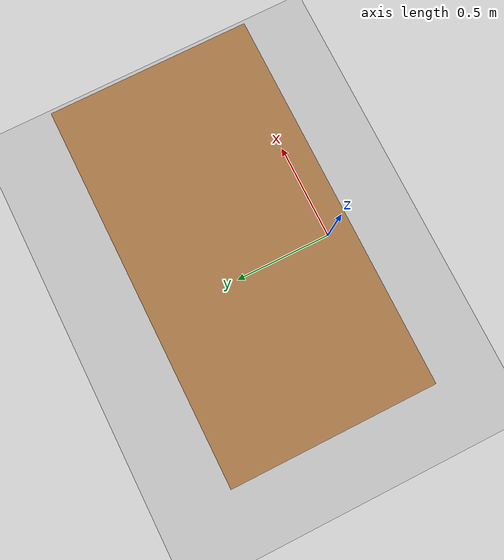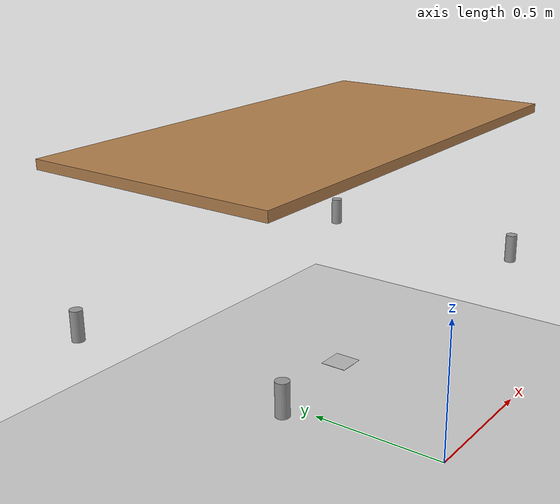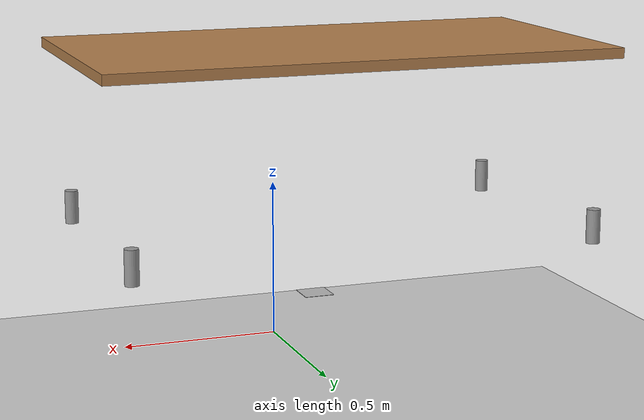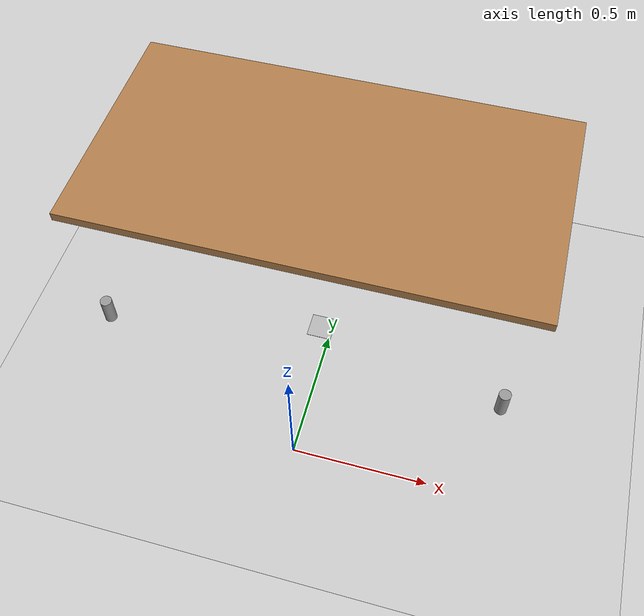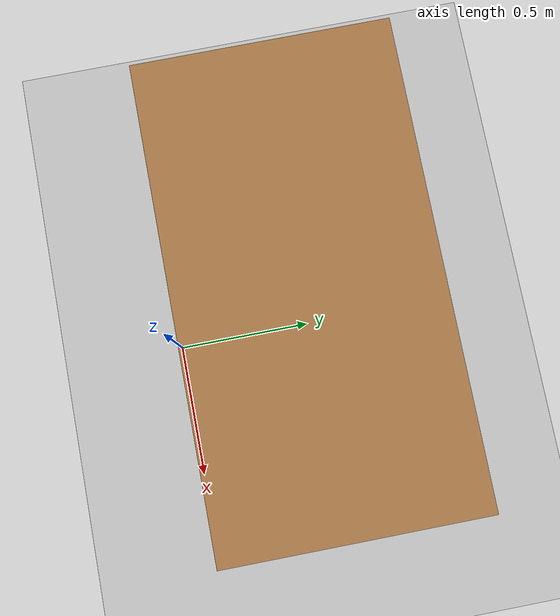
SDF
<?xml version="1.0" ?>
<sdf version="1.4">
  <!-- We use a custom world for the iiwa so that the camera angle is launched correctly. -->
  <!-- One can change this world to his needs or use another one. -->

  <world name="default">

    <include>
      <uri>model://ground_plane</uri>
    </include>

    <!-- Global light source -->
    <include>
      <uri>model://sun</uri>
    </include>

    <include>
      <uri>model://marker26_8cm</uri>
      <pose>0 0.4 .24 0 0 0</pose>
    </include>

    <include>
      <uri>model://table_short</uri>
      <name>table</name>
      <pose>0 0.5 0 0 0 0</pose>
      <static>1</static>
    </include>
  </world>

</sdf>

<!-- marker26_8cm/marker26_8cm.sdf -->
<sdf version="1.4">
  <model name="marker26_8cm">
    <static>0</static>
    <link name="marker">
      <inertial>
        <mass>0.1</mass>
        <inertia>
          <ixx>0.000000</ixx>
          <ixy>0.000000</ixy>
          <ixz>0.000000</ixz>
          <iyy>0.000000</iyy>
          <iyz>0.000000</iyz>
          <izz>0.000000</izz>
        </inertia>
      </inertial>
      <visual name="visual">
        <geometry>
          <box>
            <!-- SIZE OF THE MARKER + MARGIN -->
            <size>0.09 0.09 0.001</size>
          </box>
        </geometry>
        <material>
          <script>
            <uri>file://models/marker26_8cm/materials/scripts/marker.material</uri>
            <name>CustomAruco</name>
          </script>
        </material>
      </visual>
      <collision name="collision">
        <geometry>
          <box>
            <size>0.09 0.09 0.02</size>
            <!-- SIZE OF THE MARKER + MARGIN -->
          </box>
        </geometry>
        <surface>
          <bounce />
          <friction>
            <ode />
          </friction>
          <contact>
            <ode />
          </contact>
        </surface>
      </collision>
      <self_collide>1</self_collide>
      <kinematic>0</kinematic>
      <gravity>1</gravity>
    </link>
  </model>
</sdf>

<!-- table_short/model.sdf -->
<sdf version="1.5">
  <model name="table">
    <static>true</static>
    <link name="link">
      <collision name="surface">
        <pose>0 0 1.0 0 0 0</pose>
        <geometry>
          <box>
            <size>1.5 0.8 0.03</size>
          </box>
        </geometry>
        <surface>
          <friction>
            <ode>
              <mu>0.6</mu>
              <mu2>0.6</mu2>
            </ode>
          </friction>
        </surface>
      </collision>
      <visual name="visual1">
        <pose>0 0 1.0 0 0 0</pose>
        <geometry>
          <box>
            <size>1.5 0.8 0.03</size>
          </box>
        </geometry>
        <material>
          <script>
            <uri>file://media/materials/scripts/gazebo.material</uri>
            <name>Gazebo/Wood</name>
          </script>
        </material>
      </visual>
      <collision name="front_left_leg">
        <pose>0.68 0.38 0.5 0 0 0</pose>
        <geometry>
          <cylinder>
            <radius>0.02</radius>
            <length>0.10</length>
          </cylinder>
        </geometry>
      </collision>
      <visual name="front_left_leg">
        <pose>0.68 0.38 0.5 0 0 0</pose>
        <geometry>
          <cylinder>
            <radius>0.02</radius>
            <length>0.10</length>
          </cylinder>
        </geometry>
        <material>
          <script>
            <uri>file://media/materials/scripts/gazebo.material</uri>
            <name>Gazebo/Grey</name>
          </script>
        </material>
      </visual>
      <collision name="front_right_leg">
        <pose>0.68 -0.38 0.5 0 0 0</pose>
        <geometry>
          <cylinder>
            <radius>0.02</radius>
            <length>0.10</length>
          </cylinder>
        </geometry>
      </collision>
      <visual name="front_right_leg">
        <pose>0.68 -0.38 0.5 0 0 0</pose>
        <geometry>
          <cylinder>
            <radius>0.02</radius>
            <length>0.10</length>
          </cylinder>
        </geometry>
        <material>
          <script>
            <uri>file://media/materials/scripts/gazebo.material</uri>
            <name>Gazebo/Grey</name>
          </script>
        </material>
      </visual>
      <collision name="back_right_leg">
        <pose>-0.68 -0.38 0.5 0 0 0</pose>
        <geometry>
          <cylinder>
            <radius>0.02</radius>
            <length>0.10</length>
          </cylinder>
        </geometry>
      </collision>
      <visual name="back_right_leg">
        <pose>-0.68 -0.38 0.5 0 0 0</pose>
        <geometry>
          <cylinder>
            <radius>0.02</radius>
            <length>0.10</length>
          </cylinder>
        </geometry>
        <material>
          <script>
            <uri>file://media/materials/scripts/gazebo.material</uri>
            <name>Gazebo/Grey</name>
          </script>
        </material>
      </visual>
      <collision name="back_left_leg">
        <pose>-0.68 0.38 0.5 0 0 0</pose>
        <geometry>
          <cylinder>
            <radius>0.02</radius>
            <length>0.10</length>
          </cylinder>
        </geometry>
      </collision>
      <visual name="back_left_leg">
        <pose>-0.68 0.38 0.5 0 0 0</pose>
        <geometry>
          <cylinder>
            <radius>0.02</radius>
            <length>0.10</length>
          </cylinder>
        </geometry>
        <material>
          <script>
            <uri>file://media/materials/scripts/gazebo.material</uri>
            <name>Gazebo/Grey</name>
          </script>
        </material>
      </visual>
    </link>
  </model>
</sdf>
